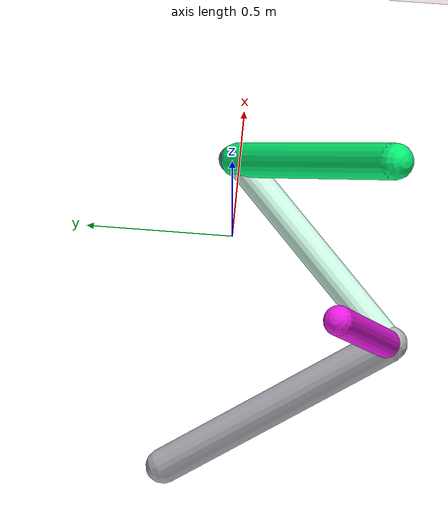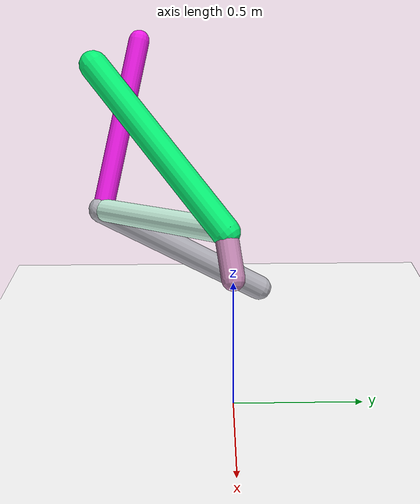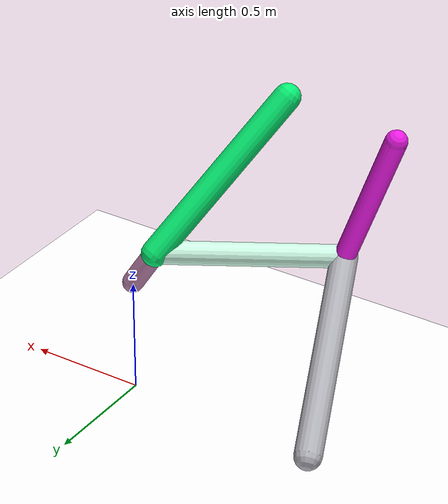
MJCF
<mujoco model="morphology">
  <option timestep="0.01"/>
  <default>
    <default class="/"/>
    <default class="0/"/>
    <default class="0/1/"/>
    <default class="0/1/2/"/>
    <default class="0/1/2/3/"/>
    <default class="0/1/2/3/4/"/>
  </default>
  <asset>
    <texture name="texplane" type="2d" builtin="checker" rgb1="0.10000000000000001 0.20000000000000001 0.29999999999999999" rgb2="0.20000000000000001 0.29999999999999999 0.40000000000000002" width="300" height="300"/>
    <material name="MatPlane" class="/" texture="texplane" texrepeat="20 20" specular="1" shininess="1" reflectance="0.5"/>
  </asset>
  <worldbody>
    <light name="//unnamed_light_0" class="/" directional="true" pos="0 0 1.5" dir="0 0 -1.3" cutoff="100" exponent="1" diffuse="1 1 1" specular="0.10000000000000001 0.10000000000000001 0.10000000000000001"/>
    <geom name="ground" class="/" type="plane" size="15 15 0.5" material="MatPlane" rgba="1 1 1 1"/>
    <site name="body" class="/" size="9.9999999999999995e-07 9.9999999999999995e-07 9.9999999999999995e-07" pos="0 0 0.51351369023323057"/>
    <body pos="0 0 0.51351369023323057" name="0/">
      <freejoint name="0/"/>
      <geom name="0/geom" class="0/" type="capsule" contype="1" conaffinity="1" condim="3" size="0.044642901294738635" rgba="0.771652967660861 0.53522101531491217 0.70886555666993745 1" friction="0.59999999999999998 0.10000000000000001 0.10000000000000001" fromto="0 0 0 -0.10220781173872295 -0.028818043599643905 0.16934384507682299"/>
      <site name="0/end0" class="0/" size="0.0050000000000000001" pos="-0.10220781173872295 -0.028818043599643905 0.16934384507682299"/>
      <site name="0/attach1" class="0/" size="9.9999999999999995e-07 9.9999999999999995e-07 9.9999999999999995e-07" pos="-0.091558221939487219 -0.025815334335725436 0.15169898550675717"/>
      <body pos="-0.091558221939487219 -0.025815334335725436 0.15169898550675717" name="0/1/">
        <joint name="0/1/joint/" class="0/" type="hinge" axis="0 0 1" limited="true" range="-33.653783211344916 33.653783211344916"/>
        <geom name="0/1/geom" class="0/1/" type="capsule" contype="1" conaffinity="1" condim="3" size="0.056273758147466116" rgba="0.022018222260874687 0.94704664935804062 0.45770339987801478 1" friction="0.59999999999999998 0.10000000000000001 0.10000000000000001" fromto="0 0 0 -0.30680721328788552 -0.50098492399818362 0.57628436133218264"/>
        <site name="0/1/end1" class="0/1/" size="0.0050000000000000001" pos="-0.30680721328788552 -0.50098492399818362 0.57628436133218264"/>
        <site name="0/1/attach2" class="0/1/" size="9.9999999999999995e-07 9.9999999999999995e-07 9.9999999999999995e-07" pos="-0.0023609452725599522 -0.0038551831140536683 0.0044346279344507546"/>
        <body pos="-0.0023609452725599522 -0.0038551831140536683 0.0044346279344507546" name="0/1/2/">
          <joint name="0/1/2/joint/" class="0/1/" type="hinge" axis="0 0.75469105365552425 0.65608034076042432" limited="true" range="-58.989681228046692 58.989681228046692"/>
          <geom name="0/1/2/geom" class="0/1/2/" type="capsule" contype="1" conaffinity="1" condim="3" size="0.049142573064880089" rgba="0.80697676116316097 0.98142242317656347 0.89963704861755822 1" friction="0.59999999999999998 0.10000000000000001 0.10000000000000001" fromto="0 0 0 -0.58119810078937684 -0.52772238527697957 -0.094814749648943986"/>
          <site name="0/1/2/end2" class="0/1/2/" size="0.0050000000000000001" pos="-0.58119810078937684 -0.52772238527697957 -0.094814749648943986"/>
          <site name="0/1/2/attach3" class="0/1/2/" size="9.9999999999999995e-07 9.9999999999999995e-07 9.9999999999999995e-07" pos="-0.57606219295156469 -0.52305902947617455 -0.093976894509361072"/>
          <body pos="-0.57606219295156469 -0.52305902947617455 -0.093976894509361072" name="0/1/2/3/">
            <joint name="0/1/2/3/joint/" class="0/1/2/" type="hinge" axis="0.6780627727311197 -0.72342053288138963 -0.12997541629782117" limited="true" range="-61.003111519133341 61.003111519133341"/>
            <geom name="0/1/2/3/geom" class="0/1/2/3/" type="capsule" contype="1" conaffinity="1" condim="3" size="0.057763169901724115" rgba="0.71232039897741606 0.7101443839608883 0.74291557728186541 1" friction="0.59999999999999998 0.10000000000000001 0.10000000000000001" fromto="0 0 0 -0.25830343605720762 0.6993989566145391 -0.47567041405700555"/>
            <site name="0/1/2/3/end3" class="0/1/2/3/" size="0.0050000000000000001" pos="-0.25830343605720762 0.6993989566145391 -0.47567041405700555"/>
            <site name="0/1/2/3/attach4" class="0/1/2/3/" size="9.9999999999999995e-07 9.9999999999999995e-07 9.9999999999999995e-07" pos="-0.0011241063754331014 0.0030437025465179625 -0.002070062068117281"/>
            <body pos="-0.0011241063754331014 0.0030437025465179625 -0.002070062068117281" name="0/1/2/3/4/">
              <joint name="0/1/2/3/4/joint/" class="0/1/2/3/" type="hinge" axis="0 0.56237398712800912 0.82688300176128049" limited="true" range="-35.640678560869439 35.640678560869439"/>
              <geom name="0/1/2/3/4/geom" class="0/1/2/3/4/" type="capsule" contype="1" conaffinity="1" condim="3" size="0.045559830455620419" rgba="0.94191159299330351 0.10341821461118939 0.91190007264045225 1" friction="0.59999999999999998 0.10000000000000001 0.10000000000000001" fromto="0 0 0 -0.2938118103595721 0.15733526889710991 0.69057247883659145"/>
              <site name="0/1/2/3/4/end4" class="0/1/2/3/4/" size="0.0050000000000000001" pos="-0.2938118103595721 0.15733526889710991 0.69057247883659145"/>
            </body>
          </body>
        </body>
      </body>
      <camera name="0/iso" class="0/" mode="trackcom" pos="-2.2999999999999998 -2.2999999999999998 1" xyaxes="0.45000000000000001 -0.45000000000000001 0 0.29999999999999999 0.14999999999999999 0.93999999999999995"/>
    </body>
  </worldbody>
  <actuator>
    <motor name="0/1/motor" class="0/1/" ctrllimited="true" ctrlrange="-1 1" gear="96" joint="0/1/joint/"/>
    <motor name="0/1/2/motor" class="0/1/2/" ctrllimited="true" ctrlrange="-1 1" gear="71" joint="0/1/2/joint/"/>
    <motor name="0/1/2/3/motor" class="0/1/2/3/" ctrllimited="true" ctrlrange="-1 1" gear="81" joint="0/1/2/3/joint/"/>
    <motor name="0/1/2/3/4/motor" class="0/1/2/3/4/" ctrllimited="true" ctrlrange="-1 1" gear="82" joint="0/1/2/3/4/joint/"/>
  </actuator>
  <sensor>
    <subtreelinvel name="velocity" body="0/"/>
  </sensor>
</mujoco>
